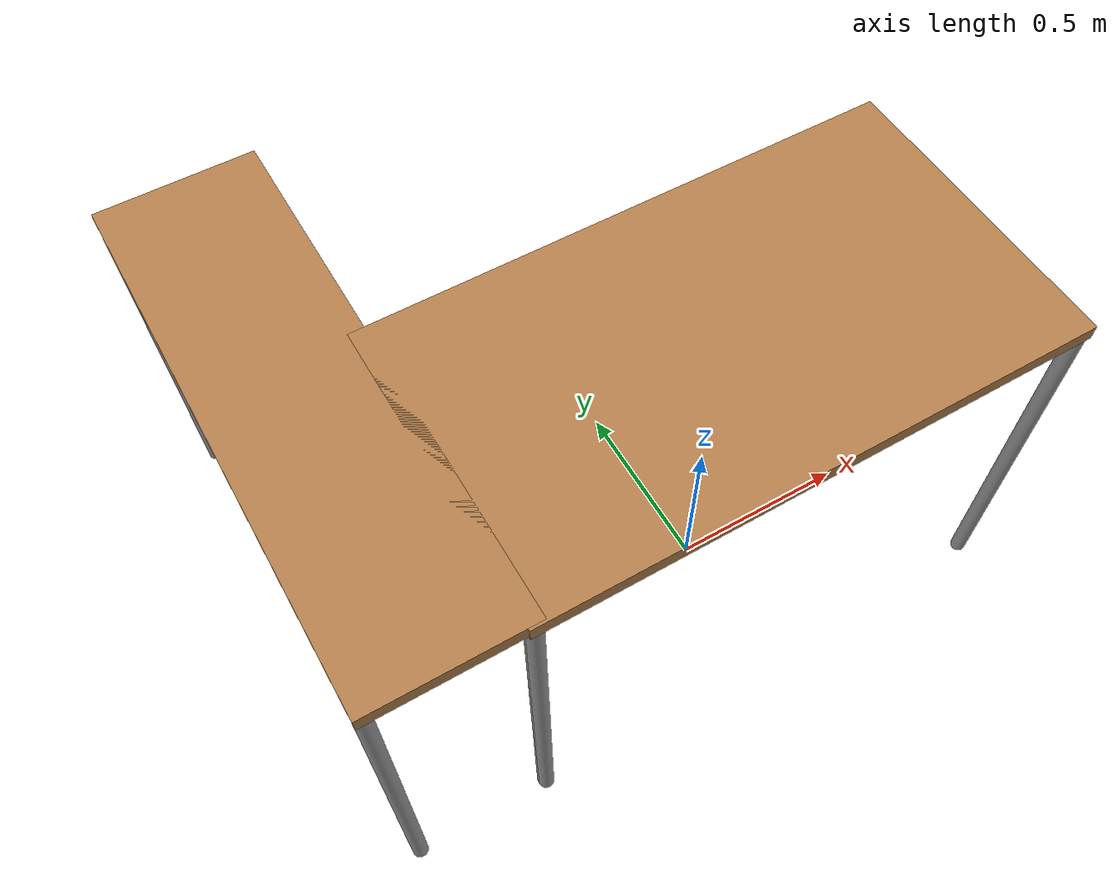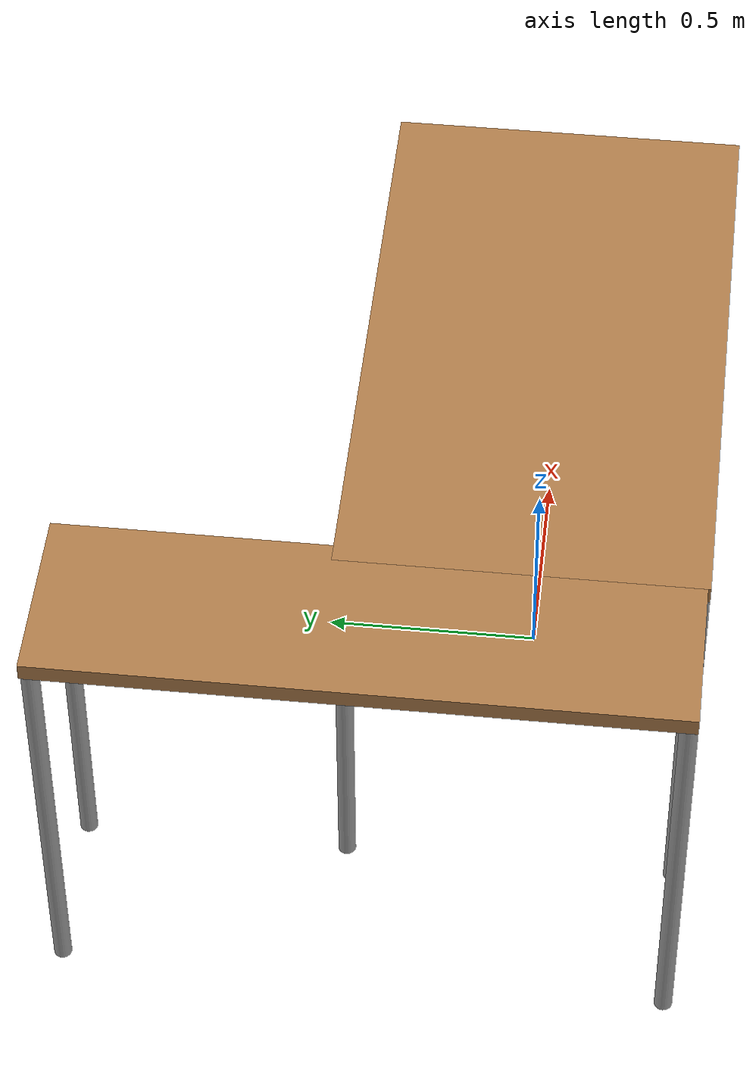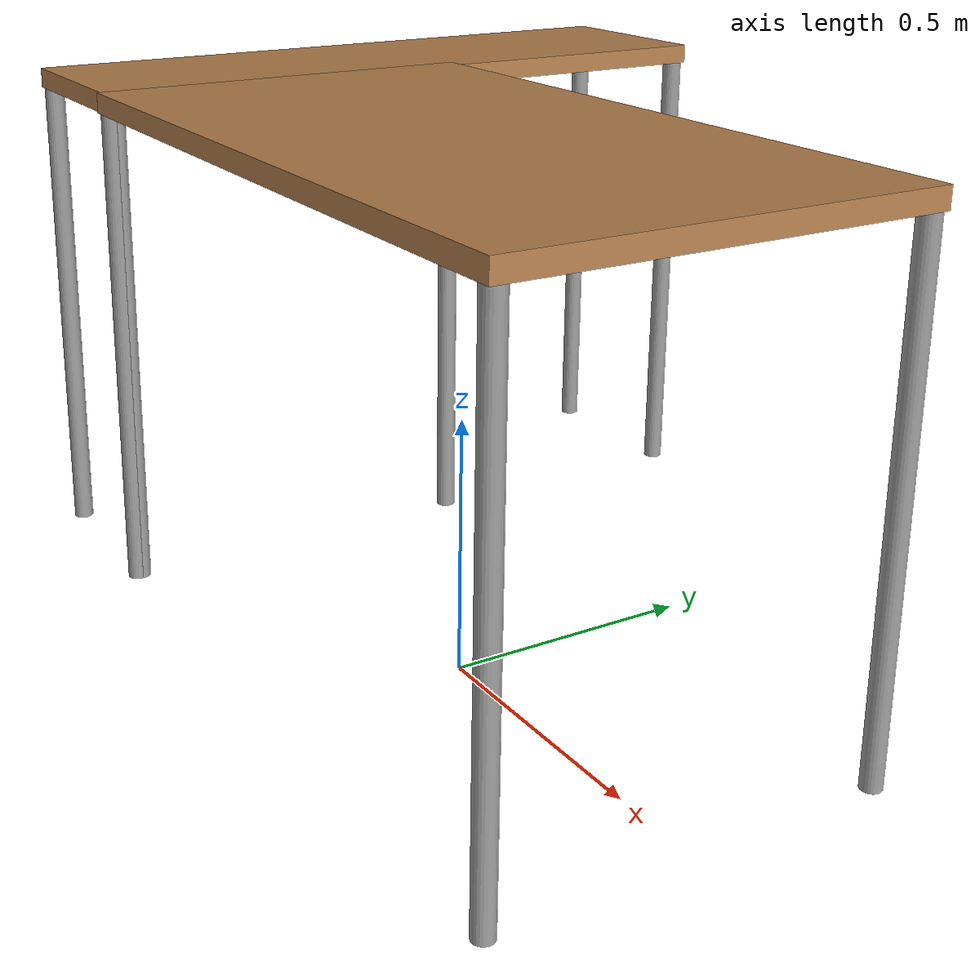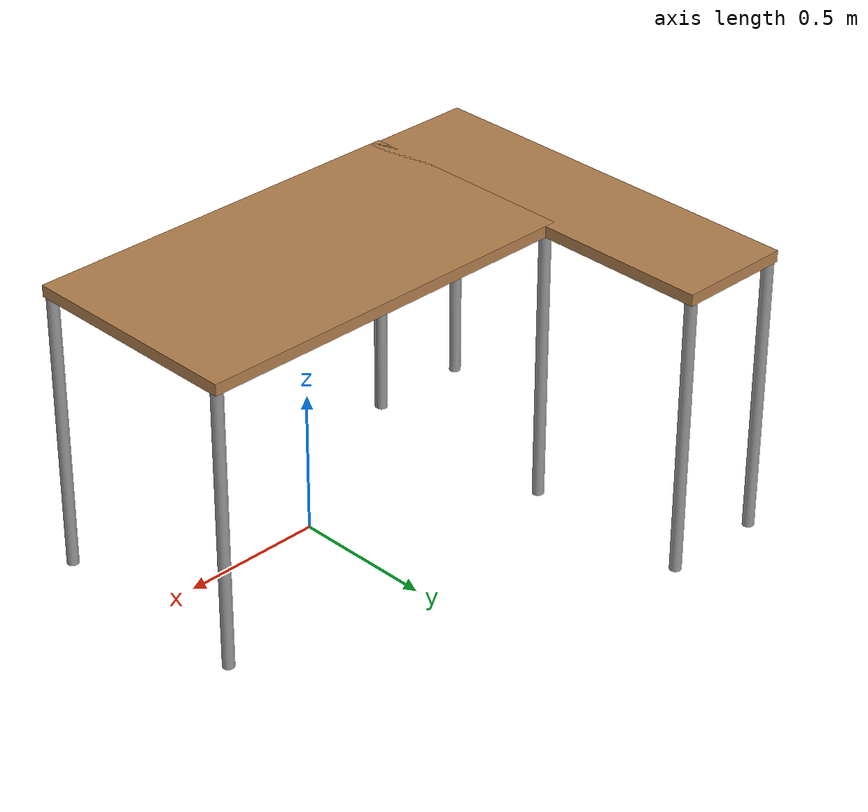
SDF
<?xml version='1.0'?>
<sdf version='1.6'>
  <model name='h_table3'>
    <link name='link'>
      <pose frame=''>0 0 0 0 -0 0</pose>
      <inertial>
        <inertia>
          <ixx>1</ixx>
          <ixy>0</ixy>
          <ixz>0</ixz>
          <iyy>1</iyy>
          <iyz>0</iyz>
          <izz>1</izz>
        </inertia>
        <mass>1</mass>
      </inertial>
      <self_collide>0</self_collide>
      <kinematic>0</kinematic>
      <visual name='front_left_leg'>
        <pose frame=''>0.68 0.38 0.5 0 -0 0</pose>
        <geometry>
          <cylinder>
            <radius>0.02</radius>
            <length>1</length>
          </cylinder>
        </geometry>
        <material>
          <script>
            <uri>file://media/materials/scripts/gazebo.material</uri>
            <name>Gazebo/Grey</name>
          </script>
          <ambient>0.3 0.3 0.3 1</ambient>
          <diffuse>0.7 0.7 0.7 1</diffuse>
          <specular>0.01 0.01 0.01 1</specular>
          <emissive>0 0 0 1</emissive>
        </material>
        <cast_shadows>1</cast_shadows>
        <transparency>0</transparency>
      </visual>
      <visual name='visual1'>
        <pose frame=''>0 0 1 0 -0 0</pose>
        <geometry>
          <box>
            <size>1.4 0.8 0.04</size>
          </box>
        </geometry>
        <material>
          <script>
            <uri>file://media/materials/scripts/gazebo.material</uri>
            <name>Gazebo/Wood</name>
          </script>
          <ambient>1 1 1 1</ambient>
          <diffuse>1 1 1 1</diffuse>
          <specular>0.2 0.2 0.2 1</specular>
          <emissive>0 0 0 1</emissive>
        </material>
        <cast_shadows>1</cast_shadows>
        <transparency>0</transparency>
      </visual>
      <visual name='back_left_leg'>
        <pose frame=''>-0.68 0.38 0.5 0 -0 0</pose>
        <geometry>
          <cylinder>
            <radius>0.02</radius>
            <length>1</length>
          </cylinder>
        </geometry>
        <material>
          <script>
            <uri>file://media/materials/scripts/gazebo.material</uri>
            <name>Gazebo/Grey</name>
          </script>
          <ambient>0.3 0.3 0.3 1</ambient>
          <diffuse>0.7 0.7 0.7 1</diffuse>
          <specular>0.01 0.01 0.01 1</specular>
          <emissive>0 0 0 1</emissive>
        </material>
        <cast_shadows>1</cast_shadows>
        <transparency>0</transparency>
      </visual>
      <visual name='back_right_leg'>
        <pose frame=''>-0.68 -0.38 0.5 0 -0 0</pose>
        <geometry>
          <cylinder>
            <radius>0.02</radius>
            <length>1</length>
          </cylinder>
        </geometry>
        <material>
          <script>
            <uri>file://media/materials/scripts/gazebo.material</uri>
            <name>Gazebo/Grey</name>
          </script>
          <ambient>0.3 0.3 0.3 1</ambient>
          <diffuse>0.7 0.7 0.7 1</diffuse>
          <specular>0.01 0.01 0.01 1</specular>
          <emissive>0 0 0 1</emissive>
        </material>
        <cast_shadows>1</cast_shadows>
        <transparency>0</transparency>
      </visual>
      <visual name='front_right_leg'>
        <pose frame=''>0.68 -0.38 0.5 0 -0 0</pose>
        <geometry>
          <cylinder>
            <radius>0.02</radius>
            <length>1</length>
          </cylinder>
        </geometry>
        <material>
          <script>
            <uri>file://media/materials/scripts/gazebo.material</uri>
            <name>Gazebo/Grey</name>
          </script>
          <ambient>0.3 0.3 0.3 1</ambient>
          <diffuse>0.7 0.7 0.7 1</diffuse>
          <specular>0.01 0.01 0.01 1</specular>
          <emissive>0 0 0 1</emissive>
        </material>
        <cast_shadows>1</cast_shadows>
        <transparency>0</transparency>
      </visual>
      <collision name='front_left_leg'>
        <laser_retro>0</laser_retro>
        <max_contacts>10</max_contacts>
        <pose frame=''>0.68 0.38 0.5 0 -0 0</pose>
        <geometry>
          <cylinder>
            <radius>0.02</radius>
            <length>1</length>
          </cylinder>
        </geometry>
        <surface>
          <friction>
            <ode>
              <mu>1</mu>
              <mu2>1</mu2>
              <fdir1>0 0 0</fdir1>
              <slip1>0</slip1>
              <slip2>0</slip2>
            </ode>
            <torsional>
              <coefficient>1</coefficient>
              <patch_radius>0</patch_radius>
              <surface_radius>0</surface_radius>
              <use_patch_radius>1</use_patch_radius>
              <ode>
                <slip>0</slip>
              </ode>
            </torsional>
          </friction>
          <bounce>
            <restitution_coefficient>0</restitution_coefficient>
            <threshold>1e+06</threshold>
          </bounce>
          <contact>
            <collide_without_contact>0</collide_without_contact>
            <collide_without_contact_bitmask>1</collide_without_contact_bitmask>
            <collide_bitmask>1</collide_bitmask>
            <ode>
              <soft_cfm>0</soft_cfm>
              <soft_erp>0.2</soft_erp>
              <kp>1e+13</kp>
              <kd>1</kd>
              <max_vel>0.01</max_vel>
              <min_depth>0</min_depth>
            </ode>
            <bullet>
              <split_impulse>1</split_impulse>
              <split_impulse_penetration_threshold>-0.01</split_impulse_penetration_threshold>
              <soft_cfm>0</soft_cfm>
              <soft_erp>0.2</soft_erp>
              <kp>1e+13</kp>
              <kd>1</kd>
            </bullet>
          </contact>
        </surface>
      </collision>
      <collision name='front_right_leg'>
        <laser_retro>0</laser_retro>
        <max_contacts>10</max_contacts>
        <pose frame=''>0.68 -0.38 0.5 0 -0 0</pose>
        <geometry>
          <cylinder>
            <radius>0.02</radius>
            <length>1</length>
          </cylinder>
        </geometry>
        <surface>
          <friction>
            <ode>
              <mu>1</mu>
              <mu2>1</mu2>
              <fdir1>0 0 0</fdir1>
              <slip1>0</slip1>
              <slip2>0</slip2>
            </ode>
            <torsional>
              <coefficient>1</coefficient>
              <patch_radius>0</patch_radius>
              <surface_radius>0</surface_radius>
              <use_patch_radius>1</use_patch_radius>
              <ode>
                <slip>0</slip>
              </ode>
            </torsional>
          </friction>
          <bounce>
            <restitution_coefficient>0</restitution_coefficient>
            <threshold>1e+06</threshold>
          </bounce>
          <contact>
            <collide_without_contact>0</collide_without_contact>
            <collide_without_contact_bitmask>1</collide_without_contact_bitmask>
            <collide_bitmask>1</collide_bitmask>
            <ode>
              <soft_cfm>0</soft_cfm>
              <soft_erp>0.2</soft_erp>
              <kp>1e+13</kp>
              <kd>1</kd>
              <max_vel>0.01</max_vel>
              <min_depth>0</min_depth>
            </ode>
            <bullet>
              <split_impulse>1</split_impulse>
              <split_impulse_penetration_threshold>-0.01</split_impulse_penetration_threshold>
              <soft_cfm>0</soft_cfm>
              <soft_erp>0.2</soft_erp>
              <kp>1e+13</kp>
              <kd>1</kd>
            </bullet>
          </contact>
        </surface>
      </collision>
      <collision name='surface'>
        <laser_retro>0</laser_retro>
        <max_contacts>10</max_contacts>
        <pose frame=''>0 0 1 0 -0 0</pose>
        <geometry>
          <box>
            <size>1.5 0.8 0.03</size>
          </box>
        </geometry>
        <surface>
          <friction>
            <ode>
              <mu>0.6</mu>
              <mu2>0.6</mu2>
              <fdir1>0 0 0</fdir1>
              <slip1>0</slip1>
              <slip2>0</slip2>
            </ode>
            <torsional>
              <coefficient>1</coefficient>
              <patch_radius>0</patch_radius>
              <surface_radius>0</surface_radius>
              <use_patch_radius>1</use_patch_radius>
              <ode>
                <slip>0</slip>
              </ode>
            </torsional>
          </friction>
          <bounce>
            <restitution_coefficient>0</restitution_coefficient>
            <threshold>1e+06</threshold>
          </bounce>
          <contact>
            <collide_without_contact>0</collide_without_contact>
            <collide_without_contact_bitmask>1</collide_without_contact_bitmask>
            <collide_bitmask>1</collide_bitmask>
            <ode>
              <soft_cfm>0</soft_cfm>
              <soft_erp>0.2</soft_erp>
              <kp>1e+13</kp>
              <kd>1</kd>
              <max_vel>0.01</max_vel>
              <min_depth>0</min_depth>
            </ode>
            <bullet>
              <split_impulse>1</split_impulse>
              <split_impulse_penetration_threshold>-0.01</split_impulse_penetration_threshold>
              <soft_cfm>0</soft_cfm>
              <soft_erp>0.2</soft_erp>
              <kp>1e+13</kp>
              <kd>1</kd>
            </bullet>
          </contact>
        </surface>
      </collision>
      <collision name='back_right_leg'>
        <laser_retro>0</laser_retro>
        <max_contacts>10</max_contacts>
        <pose frame=''>-0.68 -0.38 0.5 0 -0 0</pose>
        <geometry>
          <cylinder>
            <radius>0.02</radius>
            <length>1</length>
          </cylinder>
        </geometry>
        <surface>
          <friction>
            <ode>
              <mu>1</mu>
              <mu2>1</mu2>
              <fdir1>0 0 0</fdir1>
              <slip1>0</slip1>
              <slip2>0</slip2>
            </ode>
            <torsional>
              <coefficient>1</coefficient>
              <patch_radius>0</patch_radius>
              <surface_radius>0</surface_radius>
              <use_patch_radius>1</use_patch_radius>
              <ode>
                <slip>0</slip>
              </ode>
            </torsional>
          </friction>
          <bounce>
            <restitution_coefficient>0</restitution_coefficient>
            <threshold>1e+06</threshold>
          </bounce>
          <contact>
            <collide_without_contact>0</collide_without_contact>
            <collide_without_contact_bitmask>1</collide_without_contact_bitmask>
            <collide_bitmask>1</collide_bitmask>
            <ode>
              <soft_cfm>0</soft_cfm>
              <soft_erp>0.2</soft_erp>
              <kp>1e+13</kp>
              <kd>1</kd>
              <max_vel>0.01</max_vel>
              <min_depth>0</min_depth>
            </ode>
            <bullet>
              <split_impulse>1</split_impulse>
              <split_impulse_penetration_threshold>-0.01</split_impulse_penetration_threshold>
              <soft_cfm>0</soft_cfm>
              <soft_erp>0.2</soft_erp>
              <kp>1e+13</kp>
              <kd>1</kd>
            </bullet>
          </contact>
        </surface>
      </collision>
      <collision name='back_left_leg'>
        <laser_retro>0</laser_retro>
        <max_contacts>10</max_contacts>
        <pose frame=''>-0.68 0.38 0.5 0 -0 0</pose>
        <geometry>
          <cylinder>
            <radius>0.02</radius>
            <length>1</length>
          </cylinder>
        </geometry>
        <surface>
          <friction>
            <ode>
              <mu>1</mu>
              <mu2>1</mu2>
              <fdir1>0 0 0</fdir1>
              <slip1>0</slip1>
              <slip2>0</slip2>
            </ode>
            <torsional>
              <coefficient>1</coefficient>
              <patch_radius>0</patch_radius>
              <surface_radius>0</surface_radius>
              <use_patch_radius>1</use_patch_radius>
              <ode>
                <slip>0</slip>
              </ode>
            </torsional>
          </friction>
          <bounce>
            <restitution_coefficient>0</restitution_coefficient>
            <threshold>1e+06</threshold>
          </bounce>
          <contact>
            <collide_without_contact>0</collide_without_contact>
            <collide_without_contact_bitmask>1</collide_without_contact_bitmask>
            <collide_bitmask>1</collide_bitmask>
            <ode>
              <soft_cfm>0</soft_cfm>
              <soft_erp>0.2</soft_erp>
              <kp>1e+13</kp>
              <kd>1</kd>
              <max_vel>0.01</max_vel>
              <min_depth>0</min_depth>
            </ode>
            <bullet>
              <split_impulse>1</split_impulse>
              <split_impulse_penetration_threshold>-0.01</split_impulse_penetration_threshold>
              <soft_cfm>0</soft_cfm>
              <soft_erp>0.2</soft_erp>
              <kp>1e+13</kp>
              <kd>1</kd>
            </bullet>
          </contact>
        </surface>
      </collision>
    </link>
    <link name='link_clone'>
      <pose frame=''>-0.859488 0.306544 0 0 -0 1.57</pose>
      <inertial>
        <inertia>
          <ixx>1</ixx>
          <ixy>0</ixy>
          <ixz>0</ixz>
          <iyy>1</iyy>
          <iyz>0</iyz>
          <izz>1</izz>
        </inertia>
        <mass>1</mass>
        <pose frame=''>0 0 0 0 -0 0</pose>
      </inertial>
      <self_collide>0</self_collide>
      <kinematic>0</kinematic>
      <gravity>1</gravity>
      <visual name='front_right_leg'>
        <pose frame=''>0.68 -0.18 0.5 0 -0 0</pose>
        <geometry>
          <cylinder>
            <radius>0.02</radius>
            <length>1</length>
          </cylinder>
        </geometry>
        <material>
          <script>
            <uri>file://media/materials/scripts/gazebo.material</uri>
            <name>Gazebo/Grey</name>
          </script>
          <ambient>0.3 0.3 0.3 1</ambient>
          <diffuse>0.7 0.7 0.7 1</diffuse>
          <specular>0.01 0.01 0.01 1</specular>
          <emissive>0 0 0 1</emissive>
          <shader type='vertex'>
            <normal_map>__default__</normal_map>
          </shader>
        </material>
        <cast_shadows>1</cast_shadows>
        <transparency>0</transparency>
      </visual>
      <visual name='back_right_leg'>
        <pose frame=''>-0.68 -0.18 0.5 0 -0 0</pose>
        <geometry>
          <cylinder>
            <radius>0.02</radius>
            <length>1</length>
          </cylinder>
        </geometry>
        <material>
          <script>
            <uri>file://media/materials/scripts/gazebo.material</uri>
            <name>Gazebo/Grey</name>
          </script>
          <ambient>0.3 0.3 0.3 1</ambient>
          <diffuse>0.7 0.7 0.7 1</diffuse>
          <specular>0.01 0.01 0.01 1</specular>
          <emissive>0 0 0 1</emissive>
          <shader type='vertex'>
            <normal_map>__default__</normal_map>
          </shader>
        </material>
        <cast_shadows>1</cast_shadows>
        <transparency>0</transparency>
      </visual>
      <visual name='visual1'>
        <pose frame=''>0 0 1 0 -0 0</pose>
        <geometry>
          <box>
            <size>1.4 0.4 0.04</size>
          </box>
        </geometry>
        <material>
          <script>
            <uri>file://media/materials/scripts/gazebo.material</uri>
            <name>Gazebo/Wood</name>
          </script>
          <ambient>1 1 1 1</ambient>
          <diffuse>1 1 1 1</diffuse>
          <specular>0.2 0.2 0.2 1</specular>
          <emissive>0 0 0 1</emissive>
          <shader type='vertex'>
            <normal_map>__default__</normal_map>
          </shader>
        </material>
        <cast_shadows>1</cast_shadows>
        <transparency>0</transparency>
      </visual>
      <visual name='front_left_leg'>
        <pose frame=''>0.68 0.18 0.5 0 -0 0</pose>
        <geometry>
          <cylinder>
            <radius>0.02</radius>
            <length>1</length>
          </cylinder>
        </geometry>
        <material>
          <script>
            <uri>file://media/materials/scripts/gazebo.material</uri>
            <name>Gazebo/Grey</name>
          </script>
          <ambient>0.3 0.3 0.3 1</ambient>
          <diffuse>0.7 0.7 0.7 1</diffuse>
          <specular>0.01 0.01 0.01 1</specular>
          <emissive>0 0 0 1</emissive>
          <shader type='vertex'>
            <normal_map>__default__</normal_map>
          </shader>
        </material>
        <cast_shadows>1</cast_shadows>
        <transparency>0</transparency>
      </visual>
      <visual name='back_left_leg'>
        <pose frame=''>-0.68 0.18 0.5 0 -0 0</pose>
        <geometry>
          <cylinder>
            <radius>0.02</radius>
            <length>1</length>
          </cylinder>
        </geometry>
        <material>
          <script>
            <uri>file://media/materials/scripts/gazebo.material</uri>
            <name>Gazebo/Grey</name>
          </script>
          <ambient>0.3 0.3 0.3 1</ambient>
          <diffuse>0.7 0.7 0.7 1</diffuse>
          <specular>0.01 0.01 0.01 1</specular>
          <emissive>0 0 0 1</emissive>
          <shader type='vertex'>
            <normal_map>__default__</normal_map>
          </shader>
        </material>
        <cast_shadows>1</cast_shadows>
        <transparency>0</transparency>
      </visual>
      <collision name='back_right_leg_0'>
        <laser_retro>0</laser_retro>
        <max_contacts>10</max_contacts>
        <pose frame=''>-0.68 -0.18 0.5 0 -0 0</pose>
        <geometry>
          <cylinder>
            <radius>0.02</radius>
            <length>1</length>
          </cylinder>
        </geometry>
        <surface>
          <friction>
            <ode>
              <mu>1</mu>
              <mu2>1</mu2>
              <fdir1>0 0 0</fdir1>
              <slip1>0</slip1>
              <slip2>0</slip2>
            </ode>
            <torsional>
              <coefficient>1</coefficient>
              <patch_radius>0</patch_radius>
              <surface_radius>0</surface_radius>
              <use_patch_radius>1</use_patch_radius>
              <ode>
                <slip>0</slip>
              </ode>
            </torsional>
          </friction>
          <bounce>
            <restitution_coefficient>0</restitution_coefficient>
            <threshold>1e+06</threshold>
          </bounce>
          <contact>
            <collide_without_contact>0</collide_without_contact>
            <collide_without_contact_bitmask>1</collide_without_contact_bitmask>
            <collide_bitmask>1</collide_bitmask>
            <ode>
              <soft_cfm>0</soft_cfm>
              <soft_erp>0.2</soft_erp>
              <kp>1e+13</kp>
              <kd>1</kd>
              <max_vel>0.01</max_vel>
              <min_depth>0</min_depth>
            </ode>
            <bullet>
              <split_impulse>1</split_impulse>
              <split_impulse_penetration_threshold>-0.01</split_impulse_penetration_threshold>
              <soft_cfm>0</soft_cfm>
              <soft_erp>0.2</soft_erp>
              <kp>1e+13</kp>
              <kd>1</kd>
            </bullet>
          </contact>
        </surface>
      </collision>
      <collision name='front_left_leg_0'>
        <laser_retro>0</laser_retro>
        <max_contacts>10</max_contacts>
        <pose frame=''>0.68 0.18 0.5 0 -0 0</pose>
        <geometry>
          <cylinder>
            <radius>0.02</radius>
            <length>1</length>
          </cylinder>
        </geometry>
        <surface>
          <friction>
            <ode>
              <mu>1</mu>
              <mu2>1</mu2>
              <fdir1>0 0 0</fdir1>
              <slip1>0</slip1>
              <slip2>0</slip2>
            </ode>
            <torsional>
              <coefficient>1</coefficient>
              <patch_radius>0</patch_radius>
              <surface_radius>0</surface_radius>
              <use_patch_radius>1</use_patch_radius>
              <ode>
                <slip>0</slip>
              </ode>
            </torsional>
          </friction>
          <bounce>
            <restitution_coefficient>0</restitution_coefficient>
            <threshold>1e+06</threshold>
          </bounce>
          <contact>
            <collide_without_contact>0</collide_without_contact>
            <collide_without_contact_bitmask>1</collide_without_contact_bitmask>
            <collide_bitmask>1</collide_bitmask>
            <ode>
              <soft_cfm>0</soft_cfm>
              <soft_erp>0.2</soft_erp>
              <kp>1e+13</kp>
              <kd>1</kd>
              <max_vel>0.01</max_vel>
              <min_depth>0</min_depth>
            </ode>
            <bullet>
              <split_impulse>1</split_impulse>
              <split_impulse_penetration_threshold>-0.01</split_impulse_penetration_threshold>
              <soft_cfm>0</soft_cfm>
              <soft_erp>0.2</soft_erp>
              <kp>1e+13</kp>
              <kd>1</kd>
            </bullet>
          </contact>
        </surface>
      </collision>
      <collision name='back_left_leg_0'>
        <laser_retro>0</laser_retro>
        <max_contacts>10</max_contacts>
        <pose frame=''>-0.68 0.18 0.5 0 -0 0</pose>
        <geometry>
          <cylinder>
            <radius>0.02</radius>
            <length>1</length>
          </cylinder>
        </geometry>
        <surface>
          <friction>
            <ode>
              <mu>1</mu>
              <mu2>1</mu2>
              <fdir1>0 0 0</fdir1>
              <slip1>0</slip1>
              <slip2>0</slip2>
            </ode>
            <torsional>
              <coefficient>1</coefficient>
              <patch_radius>0</patch_radius>
              <surface_radius>0</surface_radius>
              <use_patch_radius>1</use_patch_radius>
              <ode>
                <slip>0</slip>
              </ode>
            </torsional>
          </friction>
          <bounce>
            <restitution_coefficient>0</restitution_coefficient>
            <threshold>1e+06</threshold>
          </bounce>
          <contact>
            <collide_without_contact>0</collide_without_contact>
            <collide_without_contact_bitmask>1</collide_without_contact_bitmask>
            <collide_bitmask>1</collide_bitmask>
            <ode>
              <soft_cfm>0</soft_cfm>
              <soft_erp>0.2</soft_erp>
              <kp>1e+13</kp>
              <kd>1</kd>
              <max_vel>0.01</max_vel>
              <min_depth>0</min_depth>
            </ode>
            <bullet>
              <split_impulse>1</split_impulse>
              <split_impulse_penetration_threshold>-0.01</split_impulse_penetration_threshold>
              <soft_cfm>0</soft_cfm>
              <soft_erp>0.2</soft_erp>
              <kp>1e+13</kp>
              <kd>1</kd>
            </bullet>
          </contact>
        </surface>
      </collision>
      <collision name='front_right_leg_0'>
        <laser_retro>0</laser_retro>
        <max_contacts>10</max_contacts>
        <pose frame=''>0.68 -0.18 0.5 0 -0 0</pose>
        <geometry>
          <cylinder>
            <radius>0.02</radius>
            <length>1</length>
          </cylinder>
        </geometry>
        <surface>
          <friction>
            <ode>
              <mu>1</mu>
              <mu2>1</mu2>
              <fdir1>0 0 0</fdir1>
              <slip1>0</slip1>
              <slip2>0</slip2>
            </ode>
            <torsional>
              <coefficient>1</coefficient>
              <patch_radius>0</patch_radius>
              <surface_radius>0</surface_radius>
              <use_patch_radius>1</use_patch_radius>
              <ode>
                <slip>0</slip>
              </ode>
            </torsional>
          </friction>
          <bounce>
            <restitution_coefficient>0</restitution_coefficient>
            <threshold>1e+06</threshold>
          </bounce>
          <contact>
            <collide_without_contact>0</collide_without_contact>
            <collide_without_contact_bitmask>1</collide_without_contact_bitmask>
            <collide_bitmask>1</collide_bitmask>
            <ode>
              <soft_cfm>0</soft_cfm>
              <soft_erp>0.2</soft_erp>
              <kp>1e+13</kp>
              <kd>1</kd>
              <max_vel>0.01</max_vel>
              <min_depth>0</min_depth>
            </ode>
            <bullet>
              <split_impulse>1</split_impulse>
              <split_impulse_penetration_threshold>-0.01</split_impulse_penetration_threshold>
              <soft_cfm>0</soft_cfm>
              <soft_erp>0.2</soft_erp>
              <kp>1e+13</kp>
              <kd>1</kd>
            </bullet>
          </contact>
        </surface>
      </collision>
      <collision name='surface'>
        <laser_retro>0</laser_retro>
        <max_contacts>10</max_contacts>
        <pose frame=''>0 0 1 0 -0 0</pose>
        <geometry>
          <box>
            <size>1.5 0.4 0.03</size>
          </box>
        </geometry>
        <surface>
          <friction>
            <ode>
              <mu>1</mu>
              <mu2>1</mu2>
              <fdir1>0 0 0</fdir1>
              <slip1>0</slip1>
              <slip2>0</slip2>
            </ode>
            <torsional>
              <coefficient>1</coefficient>
              <patch_radius>0</patch_radius>
              <surface_radius>0</surface_radius>
              <use_patch_radius>1</use_patch_radius>
              <ode>
                <slip>0</slip>
              </ode>
            </torsional>
          </friction>
          <bounce>
            <restitution_coefficient>0</restitution_coefficient>
            <threshold>1e+06</threshold>
          </bounce>
          <contact>
            <collide_without_contact>0</collide_without_contact>
            <collide_without_contact_bitmask>1</collide_without_contact_bitmask>
            <collide_bitmask>1</collide_bitmask>
            <ode>
              <soft_cfm>0</soft_cfm>
              <soft_erp>0.2</soft_erp>
              <kp>1e+13</kp>
              <kd>1</kd>
              <max_vel>0.01</max_vel>
              <min_depth>0</min_depth>
            </ode>
            <bullet>
              <split_impulse>1</split_impulse>
              <split_impulse_penetration_threshold>-0.01</split_impulse_penetration_threshold>
              <soft_cfm>0</soft_cfm>
              <soft_erp>0.2</soft_erp>
              <kp>1e+13</kp>
              <kd>1</kd>
            </bullet>
          </contact>
        </surface>
      </collision>
    </link>
    <static>1</static>
    <allow_auto_disable>1</allow_auto_disable>
  </model>
</sdf>
